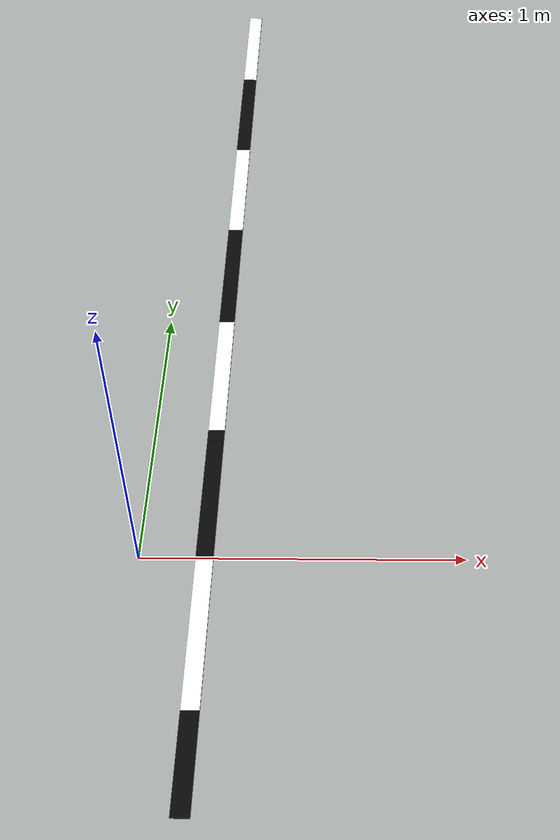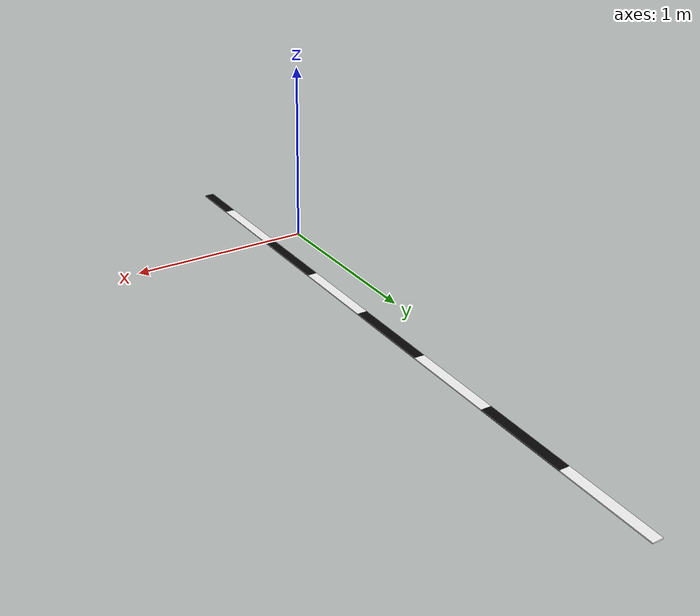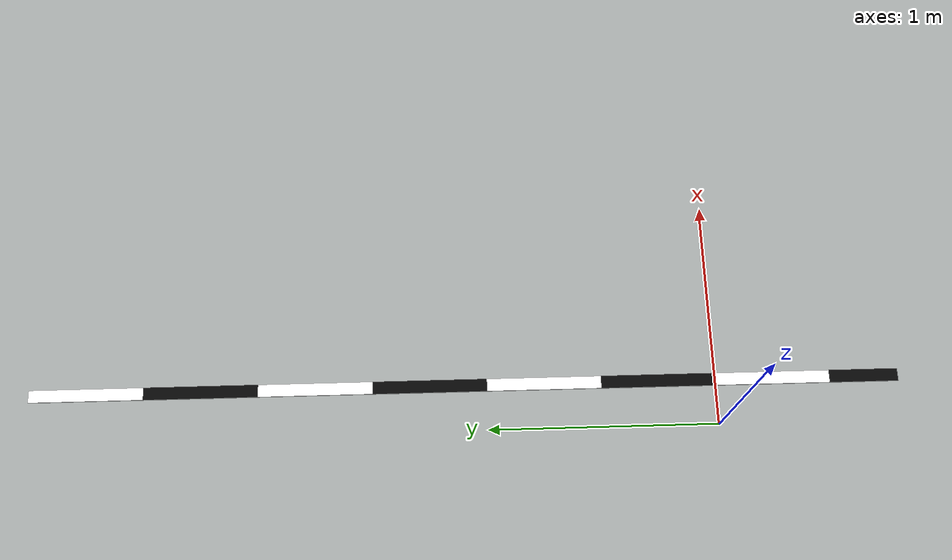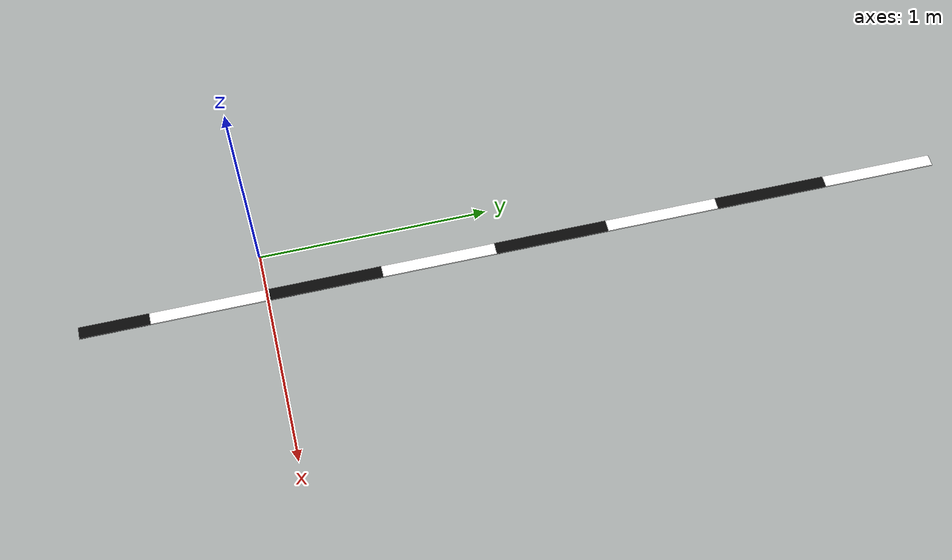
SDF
<sdf version="1.6">
 <world name="ifac_roboracer">
  <model name="ackermann_start_line">
   <static>true</static>
   <link name="start_line_link">
    <visual name="start_line_white_minus_01">
     <pose>0.2 -0.25 0.003 0 0 0</pose>
     <geometry><box><size>0.055 0.5 0.006</size></box></geometry>
     <material>
      <ambient>0.95 0.95 0.95 1</ambient>
      <diffuse>0.95 0.95 0.95 1</diffuse>
      <specular>0 0 0 1</specular>
     </material>
     <cast_shadows>false</cast_shadows>
    </visual>
    <visual name="start_line_black_minus_02">
     <pose>0.2 -0.65 0.003 0 0 0</pose>
     <geometry><box><size>0.055 0.3 0.006</size></box></geometry>
     <material>
      <ambient>0.02 0.02 0.02 1</ambient>
      <diffuse>0.02 0.02 0.02 1</diffuse>
      <specular>0 0 0 1</specular>
     </material>
     <cast_shadows>false</cast_shadows>
    </visual>
    <visual name="start_line_black_00">
     <pose>0.2 0.25 0.003 0 0 0</pose>
     <geometry><box><size>0.055 0.5 0.006</size></box></geometry>
     <material>
      <ambient>0.02 0.02 0.02 1</ambient>
      <diffuse>0.02 0.02 0.02 1</diffuse>
      <specular>0 0 0 1</specular>
     </material>
     <cast_shadows>false</cast_shadows>
    </visual>
    <visual name="start_line_white_01">
     <pose>0.2 0.75 0.003 0 0 0</pose>
     <geometry><box><size>0.055 0.5 0.006</size></box></geometry>
     <material>
      <ambient>0.95 0.95 0.95 1</ambient>
      <diffuse>0.95 0.95 0.95 1</diffuse>
      <specular>0 0 0 1</specular>
     </material>
     <cast_shadows>false</cast_shadows>
    </visual>
    <visual name="start_line_black_02">
     <pose>0.2 1.25 0.003 0 0 0</pose>
     <geometry><box><size>0.055 0.5 0.006</size></box></geometry>
     <material>
      <ambient>0.02 0.02 0.02 1</ambient>
      <diffuse>0.02 0.02 0.02 1</diffuse>
      <specular>0 0 0 1</specular>
     </material>
     <cast_shadows>false</cast_shadows>
    </visual>
    <visual name="start_line_white_03">
     <pose>0.2 1.75 0.003 0 0 0</pose>
     <geometry><box><size>0.055 0.5 0.006</size></box></geometry>
     <material>
      <ambient>0.95 0.95 0.95 1</ambient>
      <diffuse>0.95 0.95 0.95 1</diffuse>
      <specular>0 0 0 1</specular>
     </material>
     <cast_shadows>false</cast_shadows>
    </visual>
    <visual name="start_line_black_04">
     <pose>0.2 2.25 0.003 0 0 0</pose>
     <geometry><box><size>0.055 0.5 0.006</size></box></geometry>
     <material>
      <ambient>0.02 0.02 0.02 1</ambient>
      <diffuse>0.02 0.02 0.02 1</diffuse>
      <specular>0 0 0 1</specular>
     </material>
     <cast_shadows>false</cast_shadows>
    </visual>
    <visual name="start_line_white_05">
     <pose>0.2 2.75 0.003 0 0 0</pose>
     <geometry><box><size>0.055 0.5 0.006</size></box></geometry>
     <material>
      <ambient>0.95 0.95 0.95 1</ambient>
      <diffuse>0.95 0.95 0.95 1</diffuse>
      <specular>0 0 0 1</specular>
     </material>
     <cast_shadows>false</cast_shadows>
    </visual>
   </link>
  </model>
 </world>
</sdf>
